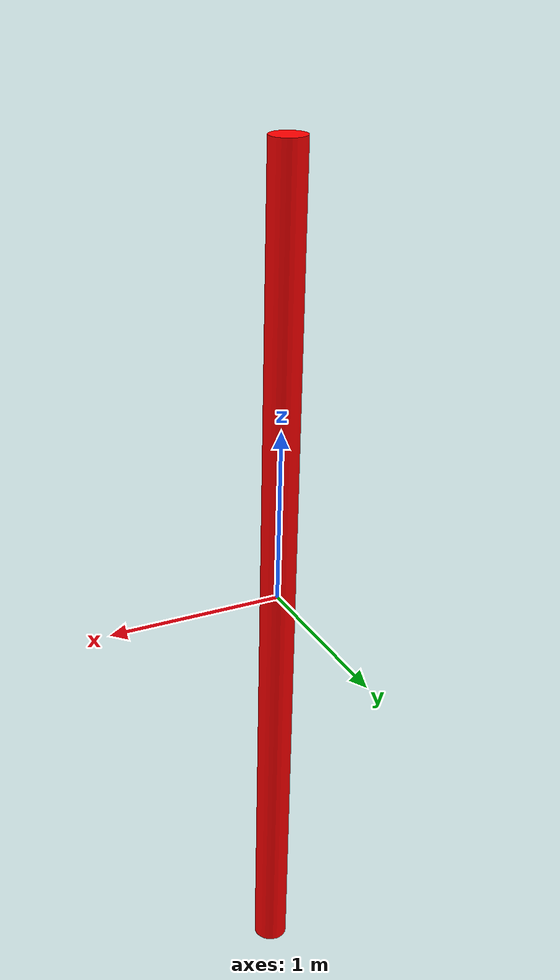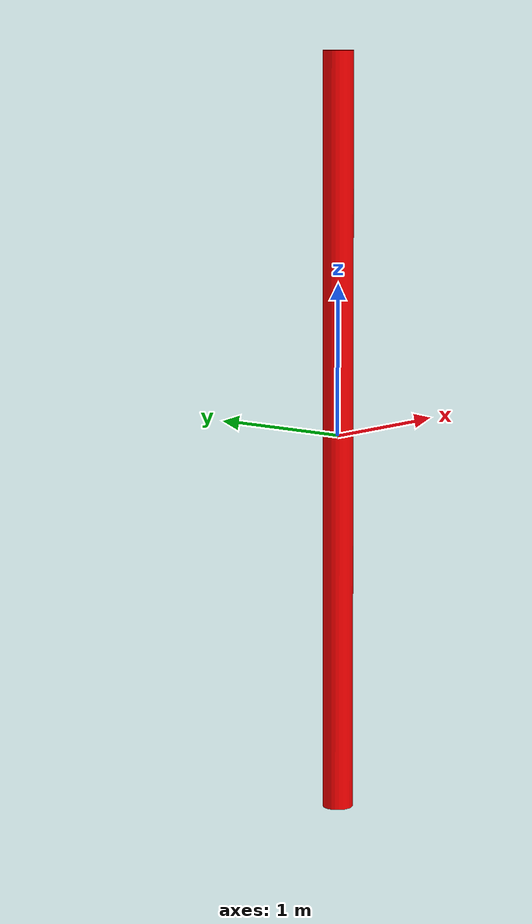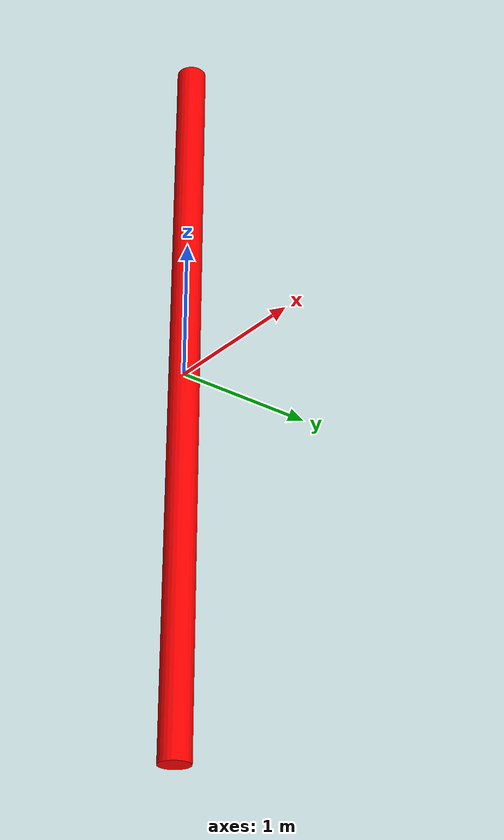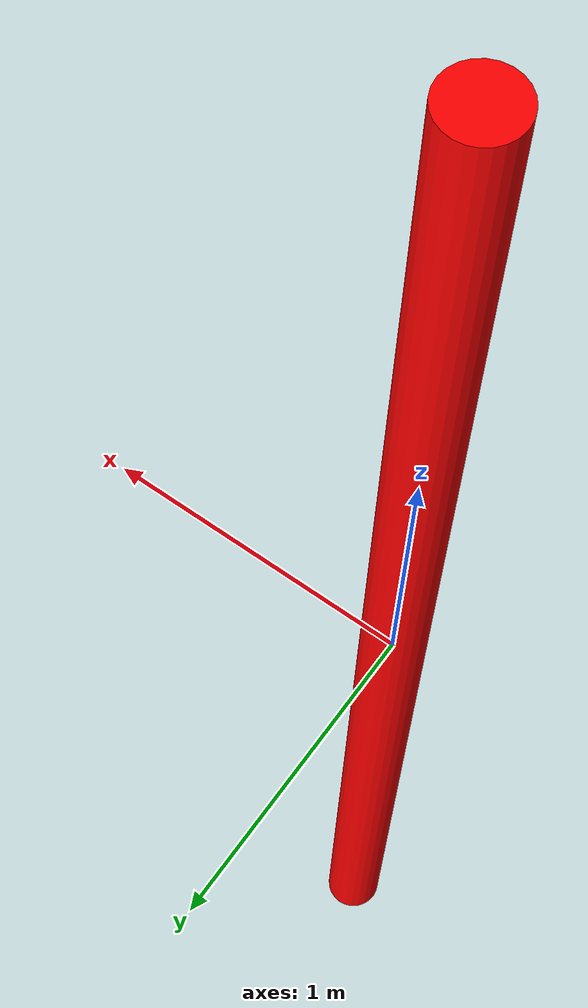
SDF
<?xml version='1.0'?>
<sdf version='1.5'>

  <model name='marker'>
    <pose>0 0 0 0 0 0</pose>
    <self_collide> 0 </self_collide>

    <link name='marker'>
      <pose> 0 0 0 0 0 0</pose>
     <inertial>
        <mass>0.05</mass>
        </inertial>
      <visual name='marker_vis'>
        <geometry>
          <cylinder>
            <radius>0.1</radius>
            <length>5</length>
          </cylinder>
        </geometry>
        <material>
          <ambient>1 0 0 1</ambient>
          <diffuse>1 0 0 1</diffuse>
          <specular>0.1 0.1 0.1 1</specular>
        </material>
      </visual>
      <collision name='marker_collision'>
        <geometry>
          <sphere><radius>0.02</radius></sphere>
        </geometry>
      </collision>
    </link>
  </model>
</sdf>
